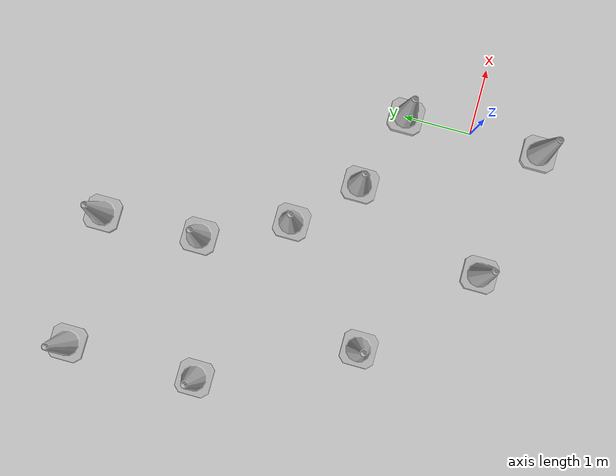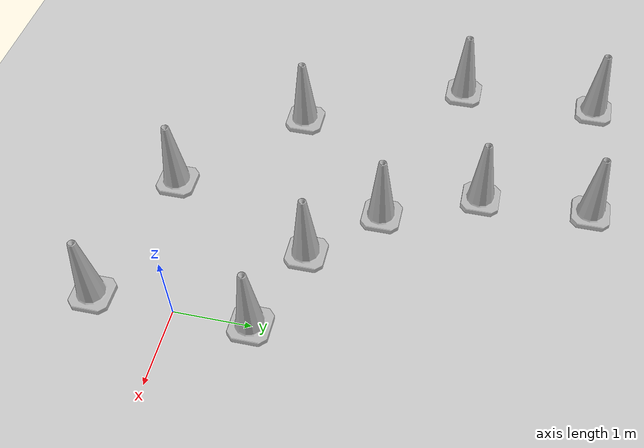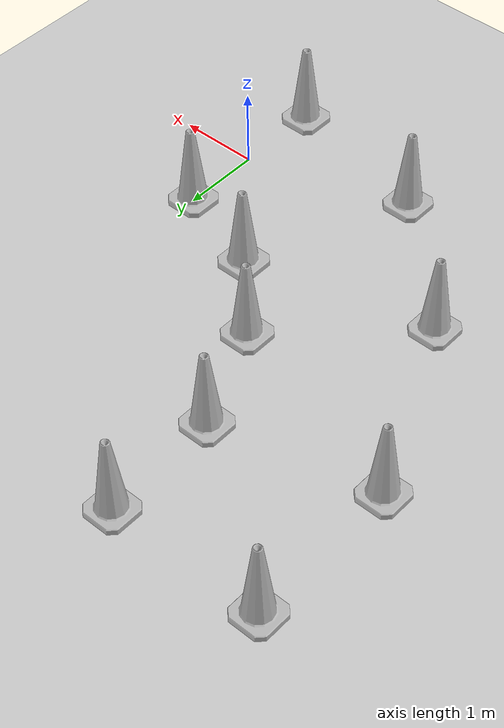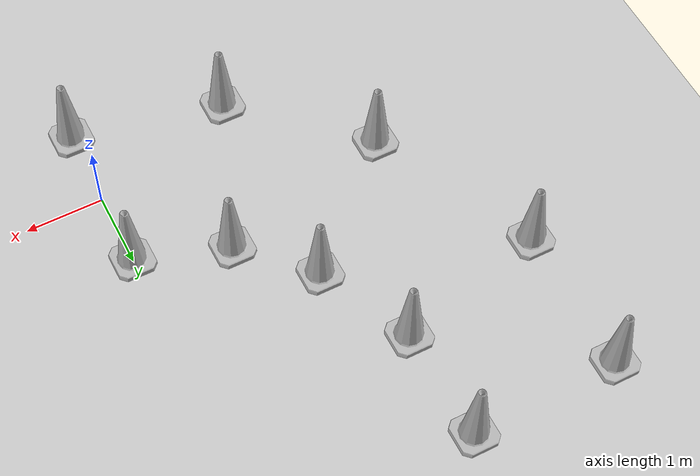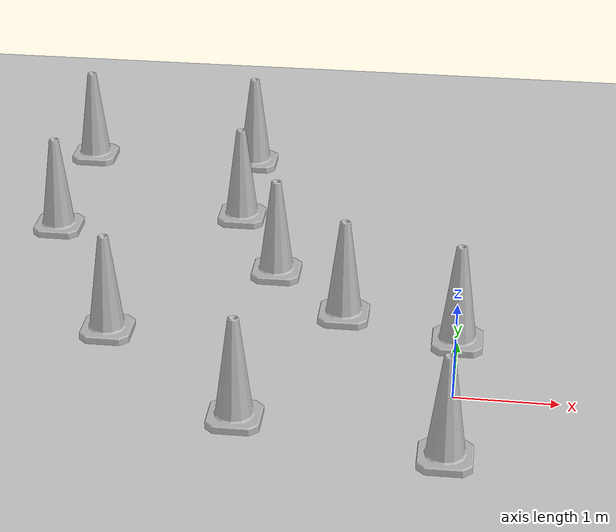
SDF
<sdf version="1.7">
 <world name="default">
  <light name="sun" type="directional">
   <pose>0 0 10 0 -0 0</pose>
   <diffuse>0.8 0.8 0.8 1</diffuse>
   <specular>0.2 0.2 0.2 1</specular>
   <attenuation>
    <range>1000</range>
    <constant>0.9</constant>
    <linear>0.01</linear>
    <quadratic>0.001</quadratic>
   </attenuation>
   <direction>-0.5 0.1 -0.9</direction>
   <spot><inner_angle>0</inner_angle><outer_angle>0</outer_angle><falloff>0</falloff></spot>
  </light>
  <model name="ground_plane">
   <static>1</static>
   <link name="link">
    <collision name="collision">
     <geometry><plane><normal>0 0 1</normal><size>100 100</size></plane></geometry>
     <surface>
      <contact><collide_bitmask>65535</collide_bitmask></contact>
      <friction><ode><mu>100</mu><mu2>50</mu2></ode></friction>
     </surface>
    </collision>
    <visual name="visual">
     <cast_shadows>0</cast_shadows>
     <geometry><plane><normal>0 0 1</normal><size>100 100</size></plane></geometry>
     <material>
      <script><uri>file://media/materials/scripts/gazebo.material</uri><name>Gazebo/Grey</name></script>
     </material>
    </visual>
   </link>
  </model>
  <gravity>0 0 -9.8</gravity>
  <magnetic_field>6e-06 2.3e-05 -4.2e-05</magnetic_field>
  <atmosphere type="adiabatic"/>
  <physics type="ode">
   <max_step_size>0.001</max_step_size>
   <real_time_factor>1</real_time_factor>
   <real_time_update_rate>1000</real_time_update_rate>
  </physics>
  <scene><ambient>0.4 0.4 0.4 1</ambient><background>0.7 0.7 0.7 1</background><shadows>1</shadows></scene>
  <spherical_coordinates>
   <surface_model>EARTH_WGS84</surface_model>
   <latitude_deg>0</latitude_deg>
   <longitude_deg>0</longitude_deg>
   <elevation>0</elevation>
   <heading_deg>0</heading_deg>
  </spherical_coordinates>
  <model name="Construction Cone">
   <link name="link">
    <collision name="collision">
     <geometry>
      <mesh><scale>10 10 10</scale><uri>model://construction_cone/meshes/construction_cone.dae</uri></mesh>
     </geometry>
    </collision>
    <visual name="visual">
     <geometry>
      <mesh><scale>10 10 10</scale><uri>model://construction_cone/meshes/construction_cone.dae</uri></mesh>
     </geometry>
    </visual>
    <inertial>
     <inertia><ixx>1</ixx><ixy>0</ixy><ixz>0</ixz><iyy>1</iyy><iyz>0</iyz><izz>1</izz></inertia>
     <mass>1</mass>
    </inertial>
   </link>
   <pose>-0.001368 0.989912 -0 0 -0 0</pose>
  </model>
  <model name="Construction Cone_0">
   <link name="link">
    <collision name="collision">
     <geometry>
      <mesh><scale>10 10 10</scale><uri>model://construction_cone/meshes/construction_cone.dae</uri></mesh>
     </geometry>
    </collision>
    <visual name="visual">
     <geometry>
      <mesh><scale>10 10 10</scale><uri>model://construction_cone/meshes/construction_cone.dae</uri></mesh>
     </geometry>
    </visual>
    <inertial>
     <inertia><ixx>1</ixx><ixy>0</ixy><ixz>0</ixz><iyy>1</iyy><iyz>0</iyz><izz>1</izz></inertia>
     <mass>1</mass>
    </inertial>
   </link>
   <pose>-0.02486 -1.04595 -0 0 -0 0</pose>
  </model>
  <model name="Construction Cone_clone">
   <link name="link">
    <collision name="collision">
     <geometry>
      <mesh><scale>10 10 10</scale><uri>model://construction_cone/meshes/construction_cone.dae</uri></mesh>
     </geometry>
    </collision>
    <visual name="visual">
     <geometry>
      <mesh><scale>10 10 10</scale><uri>model://construction_cone/meshes/construction_cone.dae</uri></mesh>
     </geometry>
    </visual>
    <inertial>
     <inertia><ixx>1</ixx><ixy>0</ixy><ixz>0</ixz><iyy>1</iyy><iyz>0</iyz><izz>1</izz></inertia>
     <mass>1</mass>
    </inertial>
   </link>
   <pose>-1.16806 1.38146 0 -0 -0 -0</pose>
  </model>
  <model name="Construction Cone_clone_0">
   <link name="link">
    <collision name="collision">
     <geometry>
      <mesh><scale>10 10 10</scale><uri>model://construction_cone/meshes/construction_cone.dae</uri></mesh>
     </geometry>
    </collision>
    <visual name="visual">
     <geometry>
      <mesh><scale>10 10 10</scale><uri>model://construction_cone/meshes/construction_cone.dae</uri></mesh>
     </geometry>
    </visual>
    <inertial>
     <inertia><ixx>1</ixx><ixy>0</ixy><ixz>0</ixz><iyy>1</iyy><iyz>0</iyz><izz>1</izz></inertia>
     <mass>1</mass>
    </inertial>
   </link>
   <pose>-1.96673 2.20357 -0 0 -0 0</pose>
  </model>
  <model name="Construction Cone_clone_1">
   <link name="link">
    <collision name="collision">
     <geometry>
      <mesh><scale>10 10 10</scale><uri>model://construction_cone/meshes/construction_cone.dae</uri></mesh>
     </geometry>
    </collision>
    <visual name="visual">
     <geometry>
      <mesh><scale>10 10 10</scale><uri>model://construction_cone/meshes/construction_cone.dae</uri></mesh>
     </geometry>
    </visual>
    <inertial>
     <inertia><ixx>1</ixx><ixy>0</ixy><ixz>0</ixz><iyy>1</iyy><iyz>0</iyz><izz>1</izz></inertia>
     <mass>1</mass>
    </inertial>
   </link>
   <pose>-2.52266 3.44858 -0 0 -1e-06 0</pose>
  </model>
  <model name="Construction Cone_clone_2">
   <link name="link">
    <collision name="collision">
     <geometry>
      <mesh><scale>10 10 10</scale><uri>model://construction_cone/meshes/construction_cone.dae</uri></mesh>
     </geometry>
    </collision>
    <visual name="visual">
     <geometry>
      <mesh><scale>10 10 10</scale><uri>model://construction_cone/meshes/construction_cone.dae</uri></mesh>
     </geometry>
    </visual>
    <inertial>
     <inertia><ixx>1</ixx><ixy>0</ixy><ixz>0</ixz><iyy>1</iyy><iyz>0</iyz><izz>1</izz></inertia>
     <mass>1</mass>
    </inertial>
   </link>
   <pose>-2.57747 4.905 -0 0 -0 0</pose>
  </model>
  <model name="Construction Cone_clone_3">
   <link name="link">
    <collision name="collision">
     <geometry>
      <mesh><scale>10 10 10</scale><uri>model://construction_cone/meshes/construction_cone.dae</uri></mesh>
     </geometry>
    </collision>
    <visual name="visual">
     <geometry>
      <mesh><scale>10 10 10</scale><uri>model://construction_cone/meshes/construction_cone.dae</uri></mesh>
     </geometry>
    </visual>
    <inertial>
     <inertia><ixx>1</ixx><ixy>0</ixy><ixz>0</ixz><iyy>1</iyy><iyz>0</iyz><izz>1</izz></inertia>
     <mass>1</mass>
    </inertial>
   </link>
   <pose>-1.98239 -0.638467 -0 0 -0 0</pose>
  </model>
  <model name="Construction Cone_clone_4">
   <link name="link">
    <collision name="collision">
     <geometry>
      <mesh><scale>10 10 10</scale><uri>model://construction_cone/meshes/construction_cone.dae</uri></mesh>
     </geometry>
    </collision>
    <visual name="visual">
     <geometry>
      <mesh><scale>10 10 10</scale><uri>model://construction_cone/meshes/construction_cone.dae</uri></mesh>
     </geometry>
    </visual>
    <inertial>
     <inertia><ixx>1</ixx><ixy>0</ixy><ixz>0</ixz><iyy>1</iyy><iyz>0</iyz><izz>1</izz></inertia>
     <mass>1</mass>
    </inertial>
   </link>
   <pose>-3.48577 0.778762 -1e-05 0 -0 0</pose>
  </model>
  <model name="Construction Cone_clone_5">
   <link name="link">
    <collision name="collision">
     <geometry>
      <mesh><scale>10 10 10</scale><uri>model://construction_cone/meshes/construction_cone.dae</uri></mesh>
     </geometry>
    </collision>
    <visual name="visual">
     <geometry>
      <mesh><scale>10 10 10</scale><uri>model://construction_cone/meshes/construction_cone.dae</uri></mesh>
     </geometry>
    </visual>
    <inertial>
     <inertia><ixx>1</ixx><ixy>0</ixy><ixz>0</ixz><iyy>1</iyy><iyz>0</iyz><izz>1</izz></inertia>
     <mass>1</mass>
    </inertial>
   </link>
   <pose>-4.51018 2.94882 -0 0 -0 0</pose>
  </model>
  <model name="Construction Cone_clone_6">
   <link name="link">
    <collision name="collision">
     <geometry>
      <mesh><scale>10 10 10</scale><uri>model://construction_cone/meshes/construction_cone.dae</uri></mesh>
     </geometry>
    </collision>
    <visual name="visual">
     <geometry>
      <mesh><scale>10 10 10</scale><uri>model://construction_cone/meshes/construction_cone.dae</uri></mesh>
     </geometry>
    </visual>
    <inertial>
     <inertia><ixx>1</ixx><ixy>0</ixy><ixz>0</ixz><iyy>1</iyy><iyz>0</iyz><izz>1</izz></inertia>
     <mass>1</mass>
    </inertial>
   </link>
   <pose>-4.51843 4.85738 0 -0 -0 -0</pose>
  </model>
 </world>
</sdf>
